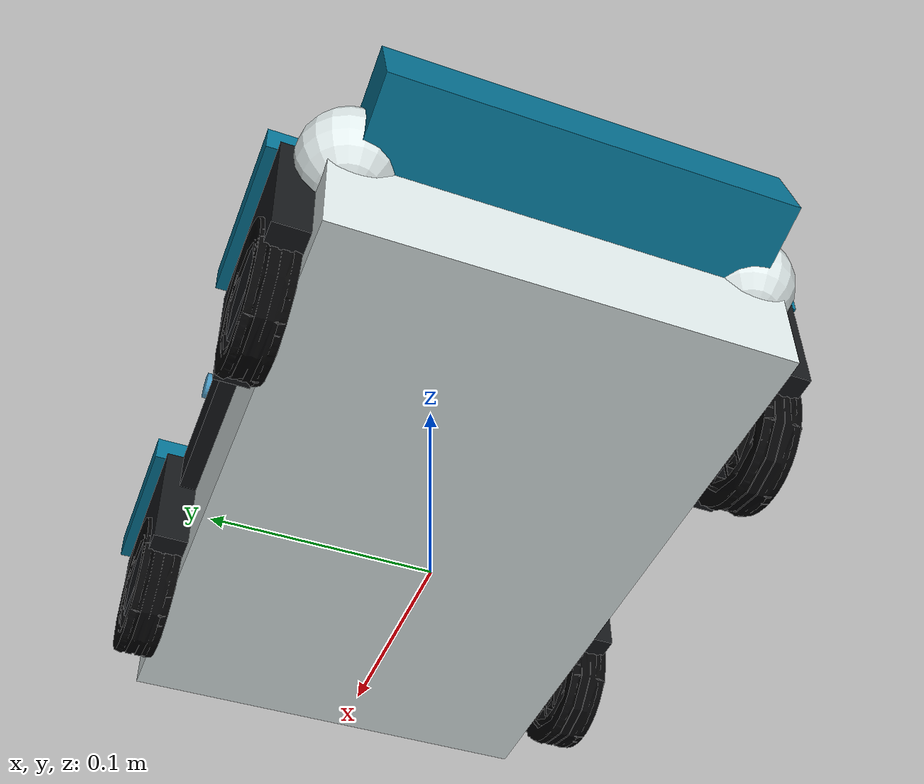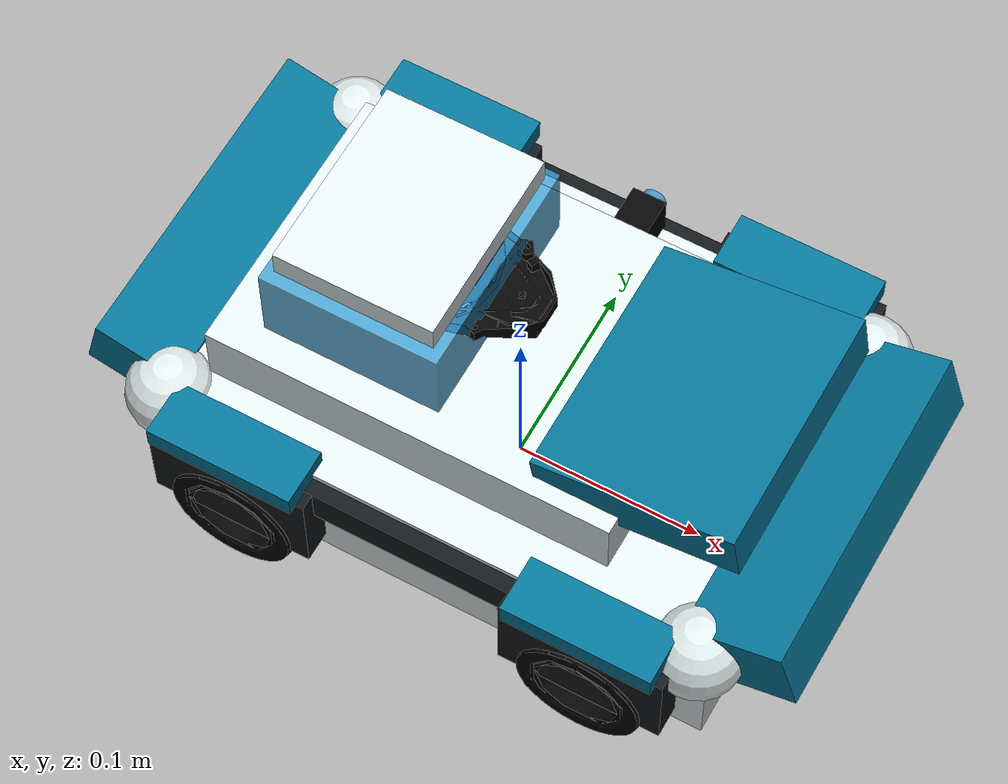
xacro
<?xml version="1.0"?>
<robot name="raicom_guard_rover" xmlns:xacro="http://www.ros.org/wiki/xacro">
  <xacro:property name="wheel_radius" value="0.033"/>
  <xacro:property name="wheel_width" value="0.022"/>
  <xacro:property name="wheel_base" value="0.190"/>
  <xacro:property name="wheel_track" value="0.218"/>
  <xacro:property name="drive_wheel_separation" value="0.340"/>
  <xacro:property name="body_length" value="0.305"/>
  <xacro:property name="body_width" value="0.200"/>

  <xacro:macro name="box_inertia" params="mass x y z">
    <inertial>
      <mass value="${mass}"/>
      <origin xyz="0 0 0" rpy="0 0 0"/>
      <inertia ixx="${mass*(y*y+z*z)/12.0}" ixy="0" ixz="0"
               iyy="${mass*(x*x+z*z)/12.0}" iyz="0"
               izz="${mass*(x*x+y*y)/12.0}"/>
    </inertial>
  </xacro:macro>

  <xacro:macro name="cylinder_inertia" params="mass radius length">
    <inertial>
      <mass value="${mass}"/>
      <origin xyz="0 0 0" rpy="0 0 0"/>
      <inertia ixx="${mass*(3*radius*radius+length*length)/12.0}" ixy="0" ixz="0"
               iyy="${mass*(3*radius*radius+length*length)/12.0}" iyz="0"
               izz="${mass*radius*radius/2.0}"/>
    </inertial>
  </xacro:macro>

  <material name="body_white"><color rgba="0.86 0.90 0.90 1"/></material>
  <material name="body_teal"><color rgba="0.02 0.45 0.58 1"/></material>
  <material name="body_shadow"><color rgba="0.08 0.09 0.10 1"/></material>
  <material name="glass_blue"><color rgba="0.22 0.60 0.80 0.82"/></material>
  <material name="sensor_black"><color rgba="0.015 0.015 0.018 1"/></material>
  <material name="light_gray"><color rgba="0.75 0.78 0.78 1"/></material>
  <material name="warning_amber"><color rgba="1.00 0.44 0.04 1"/></material>

  <link name="base_footprint"/>

  <joint name="base_joint" type="fixed">
    <parent link="base_footprint"/>
    <child link="base_link"/>
    <origin xyz="0 0 0.000" rpy="0 0 0"/>
  </joint>

  <link name="base_link">
    <visual name="lower_body">
      <origin xyz="0 0 0.052" rpy="0 0 0"/>
      <geometry><box size="${body_length} ${body_width} 0.066"/></geometry>
      <material name="body_white"/>
    </visual>
    <visual name="front_bevel">
      <origin xyz="0.163 0 0.082" rpy="0 -0.30 0"/>
      <geometry><box size="0.052 0.178 0.035"/></geometry>
      <material name="body_teal"/>
    </visual>
    <visual name="rear_bevel">
      <origin xyz="-0.163 0 0.080" rpy="0 0.25 0"/>
      <geometry><box size="0.046 0.178 0.032"/></geometry>
      <material name="body_teal"/>
    </visual>
    <visual name="top_deck">
      <origin xyz="-0.020 0 0.100" rpy="0 0 0"/>
      <geometry><box size="0.215 0.150 0.038"/></geometry>
      <material name="body_white"/>
    </visual>
    <visual name="hood_panel">
      <origin xyz="0.095 0 0.126" rpy="0 -0.16 0"/>
      <geometry><box size="0.105 0.132 0.026"/></geometry>
      <material name="body_teal"/>
    </visual>
    <visual name="cab_glass">
      <origin xyz="-0.058 0 0.136" rpy="0 0 0"/>
      <geometry><box size="0.094 0.116 0.056"/></geometry>
      <material name="glass_blue"/>
    </visual>
    <visual name="roof_panel">
      <origin xyz="-0.058 0 0.172" rpy="0 0 0"/>
      <geometry><box size="0.084 0.104 0.014"/></geometry>
      <material name="body_white"/>
    </visual>
    <visual name="front_light">
      <origin xyz="0.184 0 0.066" rpy="0 0 0"/>
      <geometry><box size="0.010 0.102 0.012"/></geometry>
      <material name="light_gray"/>
    </visual>
    <visual name="left_side_rub_rail">
      <origin xyz="0 0.103 0.072" rpy="0 0 0"/>
      <geometry><box size="0.250 0.010 0.020"/></geometry>
      <material name="body_shadow"/>
    </visual>
    <visual name="right_side_rub_rail">
      <origin xyz="0 -0.103 0.072" rpy="0 0 0"/>
      <geometry><box size="0.250 0.010 0.020"/></geometry>
      <material name="body_shadow"/>
    </visual>
    <visual name="front_left_corner_softener">
      <origin xyz="0.142 0.088 0.074" rpy="0 0 0"/>
      <geometry><sphere radius="0.023"/></geometry>
      <material name="body_white"/>
    </visual>
    <visual name="front_right_corner_softener">
      <origin xyz="0.142 -0.088 0.074" rpy="0 0 0"/>
      <geometry><sphere radius="0.023"/></geometry>
      <material name="body_white"/>
    </visual>
    <visual name="rear_left_corner_softener">
      <origin xyz="-0.142 0.088 0.074" rpy="0 0 0"/>
      <geometry><sphere radius="0.023"/></geometry>
      <material name="body_white"/>
    </visual>
    <visual name="rear_right_corner_softener">
      <origin xyz="-0.142 -0.088 0.074" rpy="0 0 0"/>
      <geometry><sphere radius="0.023"/></geometry>
      <material name="body_white"/>
    </visual>
    <collision>
      <origin xyz="0 0 0.067" rpy="0 0 0"/>
      <geometry><box size="${body_length} ${body_width} 0.110"/></geometry>
    </collision>
    <xacro:box_inertia mass="3.6" x="${body_length}" y="${body_width}" z="0.110"/>
  </link>

  <xacro:macro name="drive_wheel" params="name x y mesh">
    <joint name="${name}_wheel_joint" type="continuous">
      <parent link="base_link"/>
      <child link="${name}_wheel"/>
      <origin xyz="${x} ${y} ${wheel_radius}" rpy="-1.57079632679 0 0"/>
      <axis xyz="0 0 1"/>
      <limit effort="10.0" velocity="18.0"/>
      <dynamics damping="0.08" friction="0.02"/>
    </joint>
    <link name="${name}_wheel">
      <visual>
        <origin xyz="0 0 0" rpy="1.57079632679 0 0"/>
        <geometry>
          <mesh filename="${mesh}" scale="0.001 0.001 0.001"/>
        </geometry>
        <material name="sensor_black"/>
      </visual>
      <collision>
        <origin xyz="0 0 0" rpy="0 0 0"/>
        <geometry><cylinder radius="${wheel_radius}" length="${wheel_width}"/></geometry>
      </collision>
      <xacro:cylinder_inertia mass="0.12" radius="${wheel_radius}" length="${wheel_width}"/>
    </link>
  </xacro:macro>

  <xacro:drive_wheel name="front_left"  x="${wheel_base/2.0}"  y="${wheel_track/2.0}"  mesh="package://turtlebot3_description/meshes/wheels/left_tire.stl"/>
  <xacro:drive_wheel name="front_right" x="${wheel_base/2.0}"  y="${-wheel_track/2.0}" mesh="package://turtlebot3_description/meshes/wheels/right_tire.stl"/>
  <xacro:drive_wheel name="rear_left"   x="${-wheel_base/2.0}" y="${wheel_track/2.0}"  mesh="package://turtlebot3_description/meshes/wheels/left_tire.stl"/>
  <xacro:drive_wheel name="rear_right"  x="${-wheel_base/2.0}" y="${-wheel_track/2.0}" mesh="package://turtlebot3_description/meshes/wheels/right_tire.stl"/>

  <xacro:macro name="wheel_arch" params="name x y">
    <link name="${name}_arch">
      <visual name="outer_arch">
        <origin xyz="0 0 0" rpy="0 0 0"/>
        <geometry><box size="0.086 0.020 0.052"/></geometry>
        <material name="body_shadow"/>
      </visual>
      <visual name="top_trim">
        <origin xyz="0 0 0.032" rpy="0 0 0"/>
        <geometry><box size="0.078 0.030 0.012"/></geometry>
        <material name="body_teal"/>
      </visual>
    </link>
    <joint name="${name}_arch_joint" type="fixed">
      <parent link="base_link"/>
      <child link="${name}_arch"/>
      <origin xyz="${x} ${y} 0.055" rpy="0 0 0"/>
    </joint>
  </xacro:macro>

  <xacro:wheel_arch name="front_left"  x="${wheel_base/2.0}"  y="0.106"/>
  <xacro:wheel_arch name="front_right" x="${wheel_base/2.0}"  y="-0.106"/>
  <xacro:wheel_arch name="rear_left"   x="${-wheel_base/2.0}" y="0.106"/>
  <xacro:wheel_arch name="rear_right"  x="${-wheel_base/2.0}" y="-0.106"/>

  <link name="lidar_link">
    <visual name="lds_mesh">
      <origin xyz="0 0 0" rpy="0 0 0"/>
      <geometry>
        <mesh filename="package://turtlebot3_description/meshes/sensors/lds.stl" scale="0.001 0.001 0.001"/>
      </geometry>
      <material name="sensor_black"/>
    </visual>
    <collision>
      <origin xyz="0.015 0 -0.0065" rpy="0 0 0"/>
      <geometry><cylinder length="0.0315" radius="0.055"/></geometry>
    </collision>
    <xacro:cylinder_inertia mass="0.12" radius="0.055" length="0.0315"/>
  </link>
  <joint name="lidar_joint" type="fixed">
    <parent link="base_link"/>
    <child link="lidar_link"/>
    <origin xyz="-0.045 0 0.160" rpy="0 0 0"/>
  </joint>

  <link name="camera_link">
    <visual name="side_camera_body">
      <origin xyz="0 0 0" rpy="0 0 0"/>
      <geometry><box size="0.030 0.018 0.022"/></geometry>
      <material name="sensor_black"/>
    </visual>
    <visual name="side_camera_lens">
      <origin xyz="0.019 0 0" rpy="0 1.57079632679 0"/>
      <geometry><cylinder radius="0.006" length="0.005"/></geometry>
      <material name="glass_blue"/>
    </visual>
    <collision>
      <origin xyz="0 0 0" rpy="0 0 0"/>
      <geometry><box size="0.030 0.018 0.022"/></geometry>
    </collision>
    <xacro:box_inertia mass="0.04" x="0.030" y="0.018" z="0.022"/>
  </link>
  <joint name="camera_joint" type="fixed">
    <parent link="base_link"/>
    <child link="camera_link"/>
    <origin xyz="0.015 0.087 0.095" rpy="0 0 1.57079632679"/>
  </joint>

  <link name="camera_rgb_frame"/>
  <joint name="camera_rgb_joint" type="fixed">
    <parent link="camera_link"/>
    <child link="camera_rgb_frame"/>
    <origin xyz="0.022 0 0" rpy="0 0 0"/>
  </joint>

  <link name="camera_rgb_optical_frame"/>
  <joint name="camera_rgb_optical_joint" type="fixed">
    <parent link="camera_rgb_frame"/>
    <child link="camera_rgb_optical_frame"/>
    <origin xyz="0 0 0" rpy="-1.57079632679 0 -1.57079632679"/>
  </joint>

  <gazebo reference="front_left_wheel"><material>Gazebo/Black</material><mu1>1.15</mu1><mu2>0.18</mu2></gazebo>
  <gazebo reference="front_right_wheel"><material>Gazebo/Black</material><mu1>1.15</mu1><mu2>0.18</mu2></gazebo>
  <gazebo reference="rear_left_wheel"><material>Gazebo/Black</material><mu1>1.15</mu1><mu2>0.18</mu2></gazebo>
  <gazebo reference="rear_right_wheel"><material>Gazebo/Black</material><mu1>1.15</mu1><mu2>0.18</mu2></gazebo>
  <gazebo reference="lidar_link"><material>Gazebo/Black</material></gazebo>
  <gazebo reference="camera_link"><material>Gazebo/Black</material></gazebo>

  <gazebo>
    <plugin name="raicom_planar_drive" filename="libgazebo_ros_planar_move.so">
      <robotNamespace>/</robotNamespace>
      <commandTopic>/cmd_vel</commandTopic>
      <odometryTopic>/odom</odometryTopic>
      <odometryFrame>odom</odometryFrame>
      <robotBaseFrame>base_footprint</robotBaseFrame>
      <odometryRate>50.0</odometryRate>
    </plugin>
  </gazebo>

  <gazebo reference="lidar_link">
    <sensor type="ray" name="raicom_low_lidar">
      <always_on>true</always_on>
      <update_rate>18</update_rate>
      <visualize>false</visualize>
      <ray>
        <scan>
          <horizontal>
            <samples>720</samples>
            <resolution>1</resolution>
            <min_angle>-3.14159265</min_angle>
            <max_angle>3.14159265</max_angle>
          </horizontal>
        </scan>
        <range>
          <min>0.07</min>
          <max>5.0</max>
          <resolution>0.01</resolution>
        </range>
        <noise>
          <type>gaussian</type>
          <mean>0.0</mean>
          <stddev>0.003</stddev>
        </noise>
      </ray>
      <plugin name="raicom_laser_controller" filename="libgazebo_ros_laser.so">
        <topicName>/scan</topicName>
        <frameName>lidar_link</frameName>
      </plugin>
    </sensor>
  </gazebo>

  <gazebo reference="camera_link">
    <sensor type="camera" name="inner_wall_side_camera">
      <always_on>true</always_on>
      <update_rate>15</update_rate>
      <visualize>false</visualize>
      <camera>
        <horizontal_fov>1.047</horizontal_fov>
        <image>
          <width>640</width>
          <height>480</height>
          <format>R8G8B8</format>
        </image>
        <clip>
          <near>0.05</near>
          <far>5.0</far>
        </clip>
      </camera>
      <plugin name="raicom_side_camera_controller" filename="libgazebo_ros_camera.so">
        <cameraName>camera</cameraName>
        <alwaysOn>true</alwaysOn>
        <updateRate>15.0</updateRate>
        <imageTopicName>rgb/image_raw</imageTopicName>
        <cameraInfoTopicName>rgb/camera_info</cameraInfoTopicName>
        <frameName>camera_rgb_optical_frame</frameName>
      </plugin>
    </sensor>
  </gazebo>
</robot>
